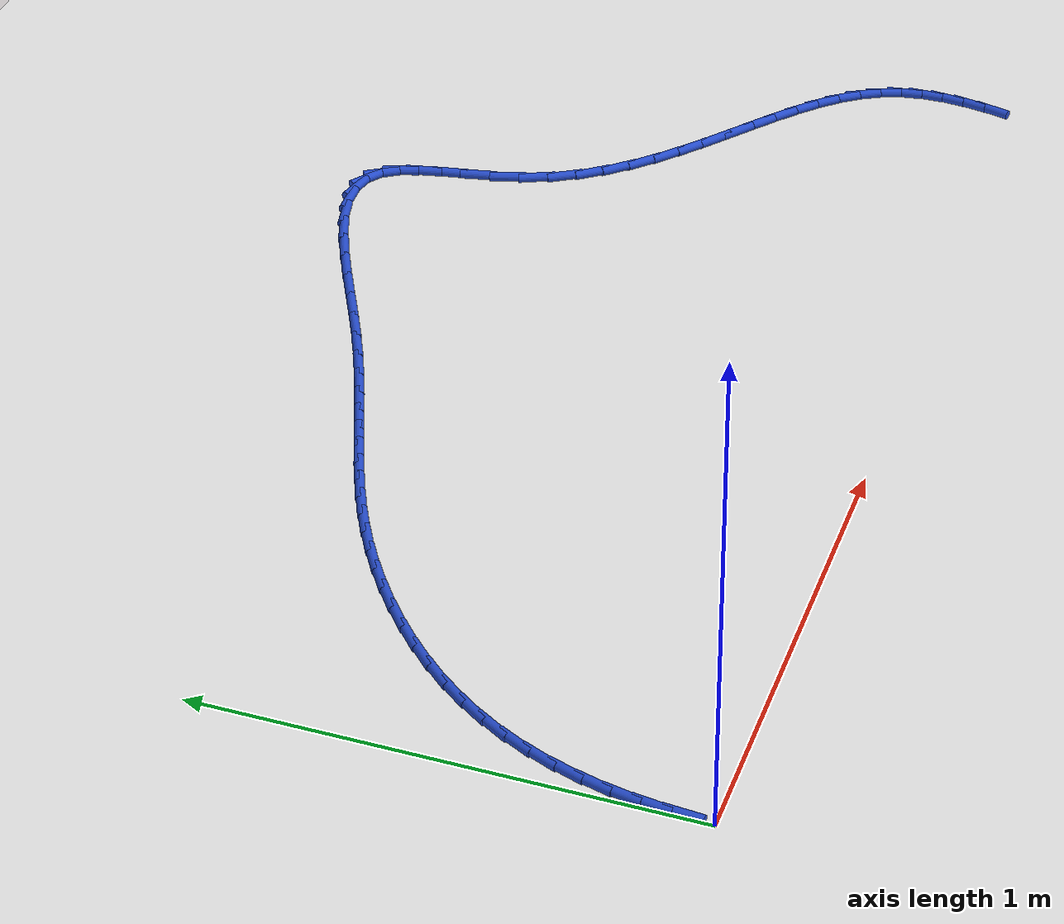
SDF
<sdf version="1.6">
 <world name="default">
  <model name="ground_plane">
   <static>1</static>
   <link name="link">
    <collision name="collision">
     <geometry><plane><normal>0 0 1</normal><size>100 100</size></plane></geometry>
     <surface><friction><ode><mu>100</mu><mu2>50</mu2></ode></friction></surface>
    </collision>
    <visual name="visual">
     <cast_shadows>0</cast_shadows>
     <geometry><plane><normal>0 0 1</normal><size>100 100</size></plane></geometry>
     <material>
      <script><uri>file://media/materials/scripts/gazebo.material</uri><name>Gazebo/WhiteGlow</name></script>
     </material>
    </visual>
   </link>
  </model>
  <model name="line">
   <link name="link_1">
    <pose>0.0011635778432192686 0.0580153607838068 0.01 0 1.57 1.4956804417643574</pose>
    <collision name="collision">
     <geometry><cylinder><radius>0.01</radius><length>0.08</length></cylinder></geometry>
    </collision>
    <visual name="visual">
     <material>
      <script><name>Gazebo/Blue</name><uri>file://media/materials/scripts/gazebo.material</uri></script>
     </material>
     <geometry><cylinder><radius>0.01</radius><length>0.08</length></cylinder></geometry>
    </visual>
   </link>
   <link name="link_2">
    <pose>0.0055102972254664866 0.11577333034410017 0.01 0 1.57 1.4385720184659754</pose>
    <collision name="collision">
     <geometry><cylinder><radius>0.01</radius><length>0.08</length></cylinder></geometry>
    </collision>
    <visual name="visual">
     <material>
      <script><name>Gazebo/Blue</name><uri>file://media/materials/scripts/gazebo.material</uri></script>
     </material>
     <geometry><cylinder><radius>0.01</radius><length>0.08</length></cylinder></geometry>
    </visual>
   </link>
   <link name="link_3">
    <pose>0.013128709947853444 0.17305449697401395 0.01 0 1.57 1.3791565489154878</pose>
    <collision name="collision">
     <geometry><cylinder><radius>0.01</radius><length>0.08</length></cylinder></geometry>
    </collision>
    <visual name="visual">
     <material>
      <script><name>Gazebo/Blue</name><uri>file://media/materials/scripts/gazebo.material</uri></script>
     </material>
     <geometry><cylinder><radius>0.01</radius><length>0.08</length></cylinder></geometry>
    </visual>
   </link>
   <link name="link_4">
    <pose>0.024107367811491948 0.22963944896668195 0.01 0 1.57 1.3172120024980227</pose>
    <collision name="collision">
     <geometry><cylinder><radius>0.01</radius><length>0.08</length></cylinder></geometry>
    </collision>
    <visual name="visual">
     <material>
      <script><name>Gazebo/Blue</name><uri>file://media/materials/scripts/gazebo.material</uri></script>
     </material>
     <geometry><cylinder><radius>0.01</radius><length>0.08</length></cylinder></geometry>
    </visual>
   </link>
   <link name="link_5">
    <pose>0.03853482261749383 0.28530877461523796 0.01 0 1.57 1.2525699367662895</pose>
    <collision name="collision">
     <geometry><cylinder><radius>0.01</radius><length>0.08</length></cylinder></geometry>
    </collision>
    <visual name="visual">
     <material>
      <script><name>Gazebo/Blue</name><uri>file://media/materials/scripts/gazebo.material</uri></script>
     </material>
     <geometry><cylinder><radius>0.01</radius><length>0.08</length></cylinder></geometry>
    </visual>
   </link>
   <link name="link_6">
    <pose>0.0564996261669709 0.3398430622128158 0.01 0 1.57 1.1851332666788328</pose>
    <collision name="collision">
     <geometry><cylinder><radius>0.01</radius><length>0.08</length></cylinder></geometry>
    </collision>
    <visual name="visual">
     <material>
      <script><name>Gazebo/Blue</name><uri>file://media/materials/scripts/gazebo.material</uri></script>
     </material>
     <geometry><cylinder><radius>0.01</radius><length>0.08</length></cylinder></geometry>
    </visual>
   </link>
   <link name="link_7">
    <pose>0.07809033026103498 0.39302290005254936 0.01 0 1.57 1.1148958853288218</pose>
    <collision name="collision">
     <geometry><cylinder><radius>0.01</radius><length>0.08</length></cylinder></geometry>
    </collision>
    <visual name="visual">
     <material>
      <script><name>Gazebo/Blue</name><uri>file://media/materials/scripts/gazebo.material</uri></script>
     </material>
     <geometry><cylinder><radius>0.01</radius><length>0.08</length></cylinder></geometry>
    </visual>
   </link>
   <link name="link_8">
    <pose>0.10339548670079785 0.4446288764275722 0.01 0 1.57 1.042266063256582</pose>
    <collision name="collision">
     <geometry><cylinder><radius>0.01</radius><length>0.08</length></cylinder></geometry>
    </collision>
    <visual name="visual">
     <material>
      <script><name>Gazebo/Blue</name><uri>file://media/materials/scripts/gazebo.material</uri></script>
     </material>
     <geometry><cylinder><radius>0.01</radius><length>0.08</length></cylinder></geometry>
    </visual>
   </link>
   <link name="link_9">
    <pose>0.13248620004754563 0.4944464834005936 0.01 0 1.57 0.9718535568783802</pose>
    <collision name="collision">
     <geometry><cylinder><radius>0.01</radius><length>0.08</length></cylinder></geometry>
    </collision>
    <visual name="visual">
     <material>
      <script><name>Gazebo/Blue</name><uri>file://media/materials/scripts/gazebo.material</uri></script>
     </material>
     <geometry><cylinder><radius>0.01</radius><length>0.08</length></cylinder></geometry>
    </visual>
   </link>
   <link name="link_10">
    <pose>0.16517371320315938 0.5423342504724428 0.01 0 1.57 0.9068055709893397</pose>
    <collision name="collision">
     <geometry><cylinder><radius>0.01</radius><length>0.08</length></cylinder></geometry>
    </collision>
    <visual name="visual">
     <material>
      <script><name>Gazebo/Blue</name><uri>file://media/materials/scripts/gazebo.material</uri></script>
     </material>
     <geometry><cylinder><radius>0.01</radius><length>0.08</length></cylinder></geometry>
    </visual>
   </link>
   <link name="link_11">
    <pose>0.20106983939457448 0.5882067594010476 0.01 0 1.57 0.8466879027338062</pose>
    <collision name="collision">
     <geometry><cylinder><radius>0.01</radius><length>0.08</length></cylinder></geometry>
    </collision>
    <visual name="visual">
     <material>
      <script><name>Gazebo/Blue</name><uri>file://media/materials/scripts/gazebo.material</uri></script>
     </material>
     <geometry><cylinder><radius>0.01</radius><length>0.08</length></cylinder></geometry>
    </visual>
   </link>
   <link name="link_12">
    <pose>0.23978129707020773 0.6319800238969059 0.01 0 1.57 0.7909168044413831</pose>
    <collision name="collision">
     <geometry><cylinder><radius>0.01</radius><length>0.08</length></cylinder></geometry>
    </collision>
    <visual name="visual">
     <material>
      <script><name>Gazebo/Blue</name><uri>file://media/materials/scripts/gazebo.material</uri></script>
     </material>
     <geometry><cylinder><radius>0.01</radius><length>0.08</length></cylinder></geometry>
    </visual>
   </link>
   <link name="link_13">
    <pose>0.28091480467847585 0.6735700576705153 0.01 0 1.57 0.7388844264960786</pose>
    <collision name="collision">
     <geometry><cylinder><radius>0.01</radius><length>0.08</length></cylinder></geometry>
    </collision>
    <visual name="visual">
     <material>
      <script><name>Gazebo/Blue</name><uri>file://media/materials/scripts/gazebo.material</uri></script>
     </material>
     <geometry><cylinder><radius>0.01</radius><length>0.08</length></cylinder></geometry>
    </visual>
   </link>
   <link name="link_14">
    <pose>0.32407708066779545 0.7128928744323726 0.01 0 1.57 0.6899787864630625</pose>
    <collision name="collision">
     <geometry><cylinder><radius>0.01</radius><length>0.08</length></cylinder></geometry>
    </collision>
    <visual name="visual">
     <material>
      <script><name>Gazebo/Blue</name><uri>file://media/materials/scripts/gazebo.material</uri></script>
     </material>
     <geometry><cylinder><radius>0.01</radius><length>0.08</length></cylinder></geometry>
    </visual>
   </link>
   <link name="link_15">
    <pose>0.36887484348658306 0.7498644878929754 0.01 0 1.57 0.6435907333754696</pose>
    <collision name="collision">
     <geometry><cylinder><radius>0.01</radius><length>0.08</length></cylinder></geometry>
    </collision>
    <visual name="visual">
     <material>
      <script><name>Gazebo/Blue</name><uri>file://media/materials/scripts/gazebo.material</uri></script>
     </material>
     <geometry><cylinder><radius>0.01</radius><length>0.08</length></cylinder></geometry>
    </visual>
   </link>
   <link name="link_16">
    <pose>0.4149148115832556 0.7844009117628212 0.01 0 1.57 0.5991108291426627</pose>
    <collision name="collision">
     <geometry><cylinder><radius>0.01</radius><length>0.08</length></cylinder></geometry>
    </collision>
    <visual name="visual">
     <material>
      <script><name>Gazebo/Blue</name><uri>file://media/materials/scripts/gazebo.material</uri></script>
     </material>
     <geometry><cylinder><radius>0.01</radius><length>0.08</length></cylinder></geometry>
    </visual>
   </link>
   <link name="link_17">
    <pose>0.46180370340622995 0.816418159752408 0.01 0 1.57 0.5559178614584396</pose>
    <collision name="collision">
     <geometry><cylinder><radius>0.01</radius><length>0.08</length></cylinder></geometry>
    </collision>
    <visual name="visual">
     <material>
      <script><name>Gazebo/Blue</name><uri>file://media/materials/scripts/gazebo.material</uri></script>
     </material>
     <geometry><cylinder><radius>0.01</radius><length>0.08</length></cylinder></geometry>
    </visual>
   </link>
   <link name="link_18">
    <pose>0.5091482374039223 0.8458322455722322 0.01 0 1.57 0.5135090589110014</pose>
    <collision name="collision">
     <geometry><cylinder><radius>0.01</radius><length>0.08</length></cylinder></geometry>
    </collision>
    <visual name="visual">
     <material>
      <script><name>Gazebo/Blue</name><uri>file://media/materials/scripts/gazebo.material</uri></script>
     </material>
     <geometry><cylinder><radius>0.01</radius><length>0.08</length></cylinder></geometry>
    </visual>
   </link>
   <link name="link_19">
    <pose>0.5565784839197971 0.8725817082260298 0.01 0 1.57 0.4738610607426521</pose>
    <collision name="collision">
     <geometry><cylinder><radius>0.01</radius><length>0.08</length></cylinder></geometry>
    </collision>
    <visual name="visual">
     <material>
      <script><name>Gazebo/Blue</name><uri>file://media/materials/scripts/gazebo.material</uri></script>
     </material>
     <geometry><cylinder><radius>0.01</radius><length>0.08</length></cylinder></geometry>
    </visual>
   </link>
   <link name="link_20">
    <pose>0.604066837152742 0.896935293118775 0.01 0 1.57 0.4397235526725653</pose>
    <collision name="collision">
     <geometry><cylinder><radius>0.01</radius><length>0.08</length></cylinder></geometry>
    </collision>
    <visual name="visual">
     <material>
      <script><name>Gazebo/Blue</name><uri>file://media/materials/scripts/gazebo.material</uri></script>
     </material>
     <geometry><cylinder><radius>0.01</radius><length>0.08</length></cylinder></geometry>
    </visual>
   </link>
   <link name="link_21">
    <pose>0.6518456333024295 0.9194124863246957 0.01 0 1.57 0.4122673624255577</pose>
    <collision name="collision">
     <geometry><cylinder><radius>0.01</radius><length>0.08</length></cylinder></geometry>
    </collision>
    <visual name="visual">
     <material>
      <script><name>Gazebo/Blue</name><uri>file://media/materials/scripts/gazebo.material</uri></script>
     </material>
     <geometry><cylinder><radius>0.01</radius><length>0.08</length></cylinder></geometry>
    </visual>
   </link>
   <link name="link_22">
    <pose>0.7001536916499326 0.9405390275136837 0.01 0 1.57 0.39224028895781204</pose>
    <collision name="collision">
     <geometry><cylinder><radius>0.01</radius><length>0.08</length></cylinder></geometry>
    </collision>
    <visual name="visual">
     <material>
      <script><name>Gazebo/Blue</name><uri>file://media/materials/scripts/gazebo.material</uri></script>
     </material>
     <geometry><cylinder><radius>0.01</radius><length>0.08</length></cylinder></geometry>
    </visual>
   </link>
   <link name="link_23">
    <pose>0.749229831476325 0.9608406563556321 0.01 0 1.57 0.3799767983185892</pose>
    <collision name="collision">
     <geometry><cylinder><radius>0.01</radius><length>0.08</length></cylinder></geometry>
    </collision>
    <visual name="visual">
     <material>
      <script><name>Gazebo/Blue</name><uri>file://media/materials/scripts/gazebo.material</uri></script>
     </material>
     <geometry><cylinder><radius>0.01</radius><length>0.08</length></cylinder></geometry>
    </visual>
   </link>
   <link name="link_24">
    <pose>0.7993128720626799 0.9808431125204328 0.01 0 1.57 0.3754158924649356</pose>
    <collision name="collision">
     <geometry><cylinder><radius>0.01</radius><length>0.08</length></cylinder></geometry>
    </collision>
    <visual name="visual">
     <material>
      <script><name>Gazebo/Blue</name><uri>file://media/materials/scripts/gazebo.material</uri></script>
     </material>
     <geometry><cylinder><radius>0.01</radius><length>0.08</length></cylinder></geometry>
    </visual>
   </link>
   <link name="link_25">
    <pose>0.8506416326900706 1.0010721356779786 0.01 0 1.57 0.3781538252466189</pose>
    <collision name="collision">
     <geometry><cylinder><radius>0.01</radius><length>0.08</length></cylinder></geometry>
    </collision>
    <visual name="visual">
     <material>
      <script><name>Gazebo/Blue</name><uri>file://media/materials/scripts/gazebo.material</uri></script>
     </material>
     <geometry><cylinder><radius>0.01</radius><length>0.08</length></cylinder></geometry>
    </visual>
   </link>
   <link name="link_26">
    <pose>0.9034549326395708 1.0220534654981626 0.01 0 1.57 0.3875161908022152</pose>
    <collision name="collision">
     <geometry><cylinder><radius>0.01</radius><length>0.08</length></cylinder></geometry>
    </collision>
    <visual name="visual">
     <material>
      <script><name>Gazebo/Blue</name><uri>file://media/materials/scripts/gazebo.material</uri></script>
     </material>
     <geometry><cylinder><radius>0.01</radius><length>0.08</length></cylinder></geometry>
    </visual>
   </link>
   <link name="link_27">
    <pose>0.9579915911922533 1.044312841650876 0.01 0 1.57 0.40263731867023866</pose>
    <collision name="collision">
     <geometry><cylinder><radius>0.01</radius><length>0.08</length></cylinder></geometry>
    </collision>
    <visual name="visual">
     <material>
      <script><name>Gazebo/Blue</name><uri>file://media/materials/scripts/gazebo.material</uri></script>
     </material>
     <geometry><cylinder><radius>0.01</radius><length>0.08</length></cylinder></geometry>
    </visual>
   </link>
   <link name="link_28">
    <pose>1.014490427629192 1.0683760038060122 0.01 0 1.57 0.4225388456281645</pose>
    <collision name="collision">
     <geometry><cylinder><radius>0.01</radius><length>0.08</length></cylinder></geometry>
    </collision>
    <visual name="visual">
     <material>
      <script><name>Gazebo/Blue</name><uri>file://media/materials/scripts/gazebo.material</uri></script>
     </material>
     <geometry><cylinder><radius>0.01</radius><length>0.08</length></cylinder></geometry>
    </visual>
   </link>
   <link name="link_29">
    <pose>1.0731902612314599 1.0947686916334638 0.01 0 1.57 0.44619678920061545</pose>
    <collision name="collision">
     <geometry><cylinder><radius>0.01</radius><length>0.08</length></cylinder></geometry>
    </collision>
    <visual name="visual">
     <material>
      <script><name>Gazebo/Blue</name><uri>file://media/materials/scripts/gazebo.material</uri></script>
     </material>
     <geometry><cylinder><radius>0.01</radius><length>0.08</length></cylinder></geometry>
    </visual>
   </link>
   <link name="link_30">
    <pose>1.134329566160568 1.1240160833974429 0.01 0 1.57 0.46798745994660196</pose>
    <collision name="collision">
     <geometry><cylinder><radius>0.01</radius><length>0.08</length></cylinder></geometry>
    </collision>
    <visual name="visual">
     <material>
      <script><name>Gazebo/Blue</name><uri>file://media/materials/scripts/gazebo.material</uri></script>
     </material>
     <geometry><cylinder><radius>0.01</radius><length>0.08</length></cylinder></geometry>
    </visual>
   </link>
   <link name="link_31">
    <pose>1.1978153178948336 1.1561041087547685 0.01 0 1.57 0.4756176379203667</pose>
    <collision name="collision">
     <geometry><cylinder><radius>0.01</radius><length>0.08</length></cylinder></geometry>
    </collision>
    <visual name="visual">
     <material>
      <script><name>Gazebo/Blue</name><uri>file://media/materials/scripts/gazebo.material</uri></script>
     </material>
     <geometry><cylinder><radius>0.01</radius><length>0.08</length></cylinder></geometry>
    </visual>
   </link>
   <link name="link_32">
    <pose>1.262605082594115 1.1894742940847094 0.01 0 1.57 0.46829637845302574</pose>
    <collision name="collision">
     <geometry><cylinder><radius>0.01</radius><length>0.08</length></cylinder></geometry>
    </collision>
    <visual name="visual">
     <material>
      <script><name>Gazebo/Blue</name><uri>file://media/materials/scripts/gazebo.material</uri></script>
     </material>
     <geometry><cylinder><radius>0.01</radius><length>0.08</length></cylinder></geometry>
    </visual>
   </link>
   <link name="link_33">
    <pose>1.3274875355562163 1.2222934311543572 0.01 0 1.57 0.44532850557562564</pose>
    <collision name="collision">
     <geometry><cylinder><radius>0.01</radius><length>0.08</length></cylinder></geometry>
    </collision>
    <visual name="visual">
     <material>
      <script><name>Gazebo/Blue</name><uri>file://media/materials/scripts/gazebo.material</uri></script>
     </material>
     <geometry><cylinder><radius>0.01</radius><length>0.08</length></cylinder></geometry>
    </visual>
   </link>
   <link name="link_34">
    <pose>1.391251352078943 1.252728311730805 0.01 0 1.57 0.4033591126474126</pose>
    <collision name="collision">
     <geometry><cylinder><radius>0.01</radius><length>0.08</length></cylinder></geometry>
    </collision>
    <visual name="visual">
     <material>
      <script><name>Gazebo/Blue</name><uri>file://media/materials/scripts/gazebo.material</uri></script>
     </material>
     <geometry><cylinder><radius>0.01</radius><length>0.08</length></cylinder></geometry>
    </visual>
   </link>
   <link name="link_35">
    <pose>1.4526852074600987 1.278945727581146 0.01 0 1.57 0.33520207098629073</pose>
    <collision name="collision">
     <geometry><cylinder><radius>0.01</radius><length>0.08</length></cylinder></geometry>
    </collision>
    <visual name="visual">
     <material>
      <script><name>Gazebo/Blue</name><uri>file://media/materials/scripts/gazebo.material</uri></script>
     </material>
     <geometry><cylinder><radius>0.01</radius><length>0.08</length></cylinder></geometry>
    </visual>
   </link>
   <link name="link_36">
    <pose>1.5105777769974886 1.2991124704724726 0.01 0 1.57 0.22715247785328693</pose>
    <collision name="collision">
     <geometry><cylinder><radius>0.01</radius><length>0.08</length></cylinder></geometry>
    </collision>
    <visual name="visual">
     <material>
      <script><name>Gazebo/Blue</name><uri>file://media/materials/scripts/gazebo.material</uri></script>
     </material>
     <geometry><cylinder><radius>0.01</radius><length>0.08</length></cylinder></geometry>
    </visual>
   </link>
   <link name="link_37">
    <pose>1.5637177359889178 1.3113953321718779 0.01 0 1.57 0.05433367899761456</pose>
    <collision name="collision">
     <geometry><cylinder><radius>0.01</radius><length>0.08</length></cylinder></geometry>
    </collision>
    <visual name="visual">
     <material>
      <script><name>Gazebo/Blue</name><uri>file://media/materials/scripts/gazebo.material</uri></script>
     </material>
     <geometry><cylinder><radius>0.01</radius><length>0.08</length></cylinder></geometry>
    </visual>
   </link>
   <link name="link_38">
    <pose>1.6108937597321913 1.3139611044464556 0.01 0 1.57 -0.2209421048929857</pose>
    <collision name="collision">
     <geometry><cylinder><radius>0.01</radius><length>0.08</length></cylinder></geometry>
    </collision>
    <visual name="visual">
     <material>
      <script><name>Gazebo/Blue</name><uri>file://media/materials/scripts/gazebo.material</uri></script>
     </material>
     <geometry><cylinder><radius>0.01</radius><length>0.08</length></cylinder></geometry>
    </visual>
   </link>
   <link name="link_39">
    <pose>1.6508945235251138 1.3049765790632977 0.01 0 1.57 -0.6157628755437791</pose>
    <collision name="collision">
     <geometry><cylinder><radius>0.01</radius><length>0.08</length></cylinder></geometry>
    </collision>
    <visual name="visual">
     <material>
      <script><name>Gazebo/Blue</name><uri>file://media/materials/scripts/gazebo.material</uri></script>
     </material>
     <geometry><cylinder><radius>0.01</radius><length>0.08</length></cylinder></geometry>
    </visual>
   </link>
   <link name="link_40">
    <pose>1.682508702665489 1.282608547789497 0.01 0 1.57 -1.0200456495284853</pose>
    <collision name="collision">
     <geometry><cylinder><radius>0.01</radius><length>0.08</length></cylinder></geometry>
    </collision>
    <visual name="visual">
     <material>
      <script><name>Gazebo/Blue</name><uri>file://media/materials/scripts/gazebo.material</uri></script>
     </material>
     <geometry><cylinder><radius>0.01</radius><length>0.08</length></cylinder></geometry>
    </visual>
   </link>
   <link name="link_41">
    <pose>1.705122530395678 1.245786518076951 0.01 0 1.57 -1.257663066033522</pose>
    <collision name="collision">
     <geometry><cylinder><radius>0.01</radius><length>0.08</length></cylinder></geometry>
    </collision>
    <visual name="visual">
     <material>
      <script><name>Gazebo/Blue</name><uri>file://media/materials/scripts/gazebo.material</uri></script>
     </material>
     <geometry><cylinder><radius>0.01</radius><length>0.08</length></cylinder></geometry>
    </visual>
   </link>
   <link name="link_42">
    <pose>1.720916702912406 1.1970068158682439 0.01 0 1.57 -1.3644811972638597</pose>
    <collision name="collision">
     <geometry><cylinder><radius>0.01</radius><length>0.08</length></cylinder></geometry>
    </collision>
    <visual name="visual">
     <material>
      <script><name>Gazebo/Blue</name><uri>file://media/materials/scripts/gazebo.material</uri></script>
     </material>
     <geometry><cylinder><radius>0.01</radius><length>0.08</length></cylinder></geometry>
    </visual>
   </link>
   <link name="link_43">
    <pose>1.7328881176509852 1.1398075564291548 0.01 0 1.57 -1.3931535681068288</pose>
    <collision name="collision">
     <geometry><cylinder><radius>0.01</radius><length>0.08</length></cylinder></geometry>
    </collision>
    <visual name="visual">
     <material>
      <script><name>Gazebo/Blue</name><uri>file://media/materials/scripts/gazebo.material</uri></script>
     </material>
     <geometry><cylinder><radius>0.01</radius><length>0.08</length></cylinder></geometry>
    </visual>
   </link>
   <link name="link_44">
    <pose>1.7440337706779725 1.077726980917181 0.01 0 1.57 -1.3638355309685162</pose>
    <collision name="collision">
     <geometry><cylinder><radius>0.01</radius><length>0.08</length></cylinder></geometry>
    </collision>
    <visual name="visual">
     <material>
      <script><name>Gazebo/Blue</name><uri>file://media/materials/scripts/gazebo.material</uri></script>
     </material>
     <geometry><cylinder><radius>0.01</radius><length>0.08</length></cylinder></geometry>
    </visual>
   </link>
   <link name="link_45">
    <pose>1.7573506580599254 1.0143033304898204 0.01 0 1.57 -1.2778442728938197</pose>
    <collision name="collision">
     <geometry><cylinder><radius>0.01</radius><length>0.08</length></cylinder></geometry>
    </collision>
    <visual name="visual">
     <material>
      <script><name>Gazebo/Blue</name><uri>file://media/materials/scripts/gazebo.material</uri></script>
     </material>
     <geometry><cylinder><radius>0.01</radius><length>0.08</length></cylinder></geometry>
    </visual>
   </link>
   <link name="link_46">
    <pose>1.7758229558147758 0.9530618653584384 0.01 0 1.57 -1.1519187983493098</pose>
    <collision name="collision">
     <geometry><cylinder><radius>0.01</radius><length>0.08</length></cylinder></geometry>
    </collision>
    <visual name="visual">
     <material>
      <script><name>Gazebo/Blue</name><uri>file://media/materials/scripts/gazebo.material</uri></script>
     </material>
     <geometry><cylinder><radius>0.01</radius><length>0.08</length></cylinder></geometry>
    </visual>
   </link>
   <link name="link_47">
    <pose>1.8011344362064798 0.8962111213151481 0.01 0 1.57 -1.0328342137884494</pose>
    <collision name="collision">
     <geometry><cylinder><radius>0.01</radius><length>0.08</length></cylinder></geometry>
    </collision>
    <visual name="visual">
     <material>
      <script><name>Gazebo/Blue</name><uri>file://media/materials/scripts/gazebo.material</uri></script>
     </material>
     <geometry><cylinder><radius>0.01</radius><length>0.08</length></cylinder></geometry>
    </visual>
   </link>
   <link name="link_48">
    <pose>1.8325680761458387 0.8435287077129013 0.01 0 1.57 -0.9295140052787553</pose>
    <collision name="collision">
     <geometry><cylinder><radius>0.01</radius><length>0.08</length></cylinder></geometry>
    </collision>
    <visual name="visual">
     <material>
      <script><name>Gazebo/Blue</name><uri>file://media/materials/scripts/gazebo.material</uri></script>
     </material>
     <geometry><cylinder><radius>0.01</radius><length>0.08</length></cylinder></geometry>
    </visual>
   </link>
   <link name="link_49">
    <pose>1.8691476687873407 0.7945297972729739 0.01 0 1.57 -0.8436904647334519</pose>
    <collision name="collision">
     <geometry><cylinder><radius>0.01</radius><length>0.08</length></cylinder></geometry>
    </collision>
    <visual name="visual">
     <material>
      <script><name>Gazebo/Blue</name><uri>file://media/materials/scripts/gazebo.material</uri></script>
     </material>
     <geometry><cylinder><radius>0.01</radius><length>0.08</length></cylinder></geometry>
    </visual>
   </link>
   <link name="link_50">
    <pose>1.909897007285475 0.7487295627166414 0.01 0 1.57 -0.775557060831172</pose>
    <collision name="collision">
     <geometry><cylinder><radius>0.01</radius><length>0.08</length></cylinder></geometry>
    </collision>
    <visual name="visual">
     <material>
      <script><name>Gazebo/Blue</name><uri>file://media/materials/scripts/gazebo.material</uri></script>
     </material>
     <geometry><cylinder><radius>0.01</radius><length>0.08</length></cylinder></geometry>
    </visual>
   </link>
   <link name="link_51">
    <pose>1.9538398847947303 0.7056431767651806 0.01 0 1.57 -0.7245335009203292</pose>
    <collision name="collision">
     <geometry><cylinder><radius>0.01</radius><length>0.08</length></cylinder></geometry>
    </collision>
    <visual name="visual">
     <material>
      <script><name>Gazebo/Blue</name><uri>file://media/materials/scripts/gazebo.material</uri></script>
     </material>
     <geometry><cylinder><radius>0.01</radius><length>0.08</length></cylinder></geometry>
    </visual>
   </link>
   <link name="link_52">
    <pose>2.000000094469594 0.6647858121398683 0.01 0 1.57 -0.6898887761705595</pose>
    <collision name="collision">
     <geometry><cylinder><radius>0.01</radius><length>0.08</length></cylinder></geometry>
    </collision>
    <visual name="visual">
     <material>
      <script><name>Gazebo/Blue</name><uri>file://media/materials/scripts/gazebo.material</uri></script>
     </material>
     <geometry><cylinder><radius>0.01</radius><length>0.08</length></cylinder></geometry>
    </visual>
   </link>
   <link name="link_53">
    <pose>2.0474014294645553 0.6256726415619801 0.01 0 1.57 -0.6711591552805282</pose>
    <collision name="collision">
     <geometry><cylinder><radius>0.01</radius><length>0.08</length></cylinder></geometry>
    </collision>
    <visual name="visual">
     <material>
      <script><name>Gazebo/Blue</name><uri>file://media/materials/scripts/gazebo.material</uri></script>
     </material>
     <geometry><cylinder><radius>0.01</radius><length>0.08</length></cylinder></geometry>
    </visual>
   </link>
   <link name="link_54">
    <pose>2.095067682934102 0.5878188377527922 0.01 0 1.57 -0.6684147667629469</pose>
    <collision name="collision">
     <geometry><cylinder><radius>0.01</radius><length>0.08</length></cylinder></geometry>
    </collision>
    <visual name="visual">
     <material>
      <script><name>Gazebo/Blue</name><uri>file://media/materials/scripts/gazebo.material</uri></script>
     </material>
     <geometry><cylinder><radius>0.01</radius><length>0.08</length></cylinder></geometry>
    </visual>
   </link>
   <link name="link_55">
    <pose>2.142022648032724 0.5507395734335809 0.01 0 1.57 -0.6824460514232923</pose>
    <collision name="collision">
     <geometry><cylinder><radius>0.01</radius><length>0.08</length></cylinder></geometry>
    </collision>
    <visual name="visual">
     <material>
      <script><name>Gazebo/Blue</name><uri>file://media/materials/scripts/gazebo.material</uri></script>
     </material>
     <geometry><cylinder><radius>0.01</radius><length>0.08</length></cylinder></geometry>
    </visual>
   </link>
   <link name="link_56">
    <pose>2.1872901179149093 0.5139500213256231 0.01 0 1.57 -0.7149131479105666</pose>
    <collision name="collision">
     <geometry><cylinder><radius>0.01</radius><length>0.08</length></cylinder></geometry>
    </collision>
    <visual name="visual">
     <material>
      <script><name>Gazebo/Blue</name><uri>file://media/materials/scripts/gazebo.material</uri></script>
     </material>
     <geometry><cylinder><radius>0.01</radius><length>0.08</length></cylinder></geometry>
    </visual>
   </link>
   <link name="link_57">
    <pose>2.229893885735144 0.47696535415019425 0.01 0 1.57 -0.7684446089645521</pose>
    <collision name="collision">
     <geometry><cylinder><radius>0.01</radius><length>0.08</length></cylinder></geometry>
    </collision>
    <visual name="visual">
     <material>
      <script><name>Gazebo/Blue</name><uri>file://media/materials/scripts/gazebo.material</uri></script>
     </material>
     <geometry><cylinder><radius>0.01</radius><length>0.08</length></cylinder></geometry>
    </visual>
   </link>
   <link name="link_58">
    <pose>2.268857744647921 0.4393007446285708 0.01 0 1.57 -0.8465654408182919</pose>
    <collision name="collision">
     <geometry><cylinder><radius>0.01</radius><length>0.08</length></cylinder></geometry>
    </collision>
    <visual name="visual">
     <material>
      <script><name>Gazebo/Blue</name><uri>file://media/materials/scripts/gazebo.material</uri></script>
     </material>
     <geometry><cylinder><radius>0.01</radius><length>0.08</length></cylinder></geometry>
    </visual>
   </link>
   <link name="link_59">
    <pose>2.3032054878077246 0.40047136548202894 0.01 0 1.57 -0.9531384031270003</pose>
    <collision name="collision">
     <geometry><cylinder><radius>0.01</radius><length>0.08</length></cylinder></geometry>
    </collision>
    <visual name="visual">
     <material>
      <script><name>Gazebo/Blue</name><uri>file://media/materials/scripts/gazebo.material</uri></script>
     </material>
     <geometry><cylinder><radius>0.01</radius><length>0.08</length></cylinder></geometry>
    </visual>
   </link>
   <link name="link_60">
    <pose>2.3319609083690462 0.3599923894318454 0.01 0 1.57 -1.0907613802689187</pose>
    <collision name="collision">
     <geometry><cylinder><radius>0.01</radius><length>0.08</length></cylinder></geometry>
    </collision>
    <visual name="visual">
     <material>
      <script><name>Gazebo/Blue</name><uri>file://media/materials/scripts/gazebo.material</uri></script>
     </material>
     <geometry><cylinder><radius>0.01</radius><length>0.08</length></cylinder></geometry>
    </visual>
   </link>
   <link name="link_61">
    <pose>2.3541477994863724 0.317378989199296 0.01 0 1.57 -1.256227066447918</pose>
    <collision name="collision">
     <geometry><cylinder><radius>0.01</radius><length>0.08</length></cylinder></geometry>
    </collision>
    <visual name="visual">
     <material>
      <script><name>Gazebo/Blue</name><uri>file://media/materials/scripts/gazebo.material</uri></script>
     </material>
     <geometry><cylinder><radius>0.01</radius><length>0.08</length></cylinder></geometry>
    </visual>
   </link>
   <link name="link_62">
    <pose>2.36885679442497 0.27217243145499315 0.01 0 1.57 -1.4193570558787127</pose>
    <collision name="collision">
     <geometry><cylinder><radius>0.01</radius><length>0.08</length></cylinder></geometry>
    </collision>
    <visual name="visual">
     <material>
      <script><name>Gazebo/Blue</name><uri>file://media/materials/scripts/gazebo.material</uri></script>
     </material>
     <geometry><cylinder><radius>0.01</radius><length>0.08</length></cylinder></geometry>
    </visual>
   </link>
   <link name="link_63">
    <pose>2.3761627664636102 0.22429822384025727 0.01 0 1.57 -1.556341943165149</pose>
    <collision name="collision">
     <geometry><cylinder><radius>0.01</radius><length>0.08</length></cylinder></geometry>
    </collision>
    <visual name="visual">
     <material>
      <script><name>Gazebo/Blue</name><uri>file://media/materials/scripts/gazebo.material</uri></script>
     </material>
     <geometry><cylinder><radius>0.01</radius><length>0.08</length></cylinder></geometry>
    </visual>
   </link>
   <link name="link_64">
    <pose>2.376890215199506 0.17397452328958463 0.01 0 1.57 1.4757840972440917</pose>
    <collision name="collision">
     <geometry><cylinder><radius>0.01</radius><length>0.08</length></cylinder></geometry>
    </collision>
    <visual name="visual">
     <material>
      <script><name>Gazebo/Blue</name><uri>file://media/materials/scripts/gazebo.material</uri></script>
     </material>
     <geometry><cylinder><radius>0.01</radius><length>0.08</length></cylinder></geometry>
    </visual>
   </link>
   <link name="link_65">
    <pose>2.3718824642881007 0.1214268355287261 0.01 0 1.57 1.3912597684235488</pose>
    <collision name="collision">
     <geometry><cylinder><radius>0.01</radius><length>0.08</length></cylinder></geometry>
    </collision>
    <visual name="visual">
     <material>
      <script><name>Gazebo/Blue</name><uri>file://media/materials/scripts/gazebo.material</uri></script>
     </material>
     <geometry><cylinder><radius>0.01</radius><length>0.08</length></cylinder></geometry>
    </visual>
   </link>
   <link name="link_66">
    <pose>2.3619828373848284 0.06688066628343226 0.01 0 1.57 1.3280182184813925</pose>
    <collision name="collision">
     <geometry><cylinder><radius>0.01</radius><length>0.08</length></cylinder></geometry>
    </collision>
    <visual name="visual">
     <material>
      <script><name>Gazebo/Blue</name><uri>file://media/materials/scripts/gazebo.material</uri></script>
     </material>
     <geometry><cylinder><radius>0.01</radius><length>0.08</length></cylinder></geometry>
    </visual>
   </link>
  </model>
 </world>
</sdf>
